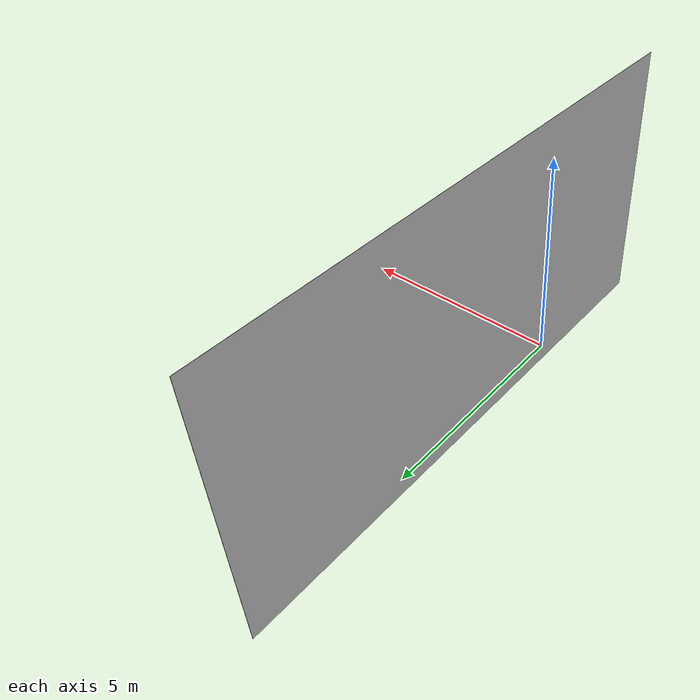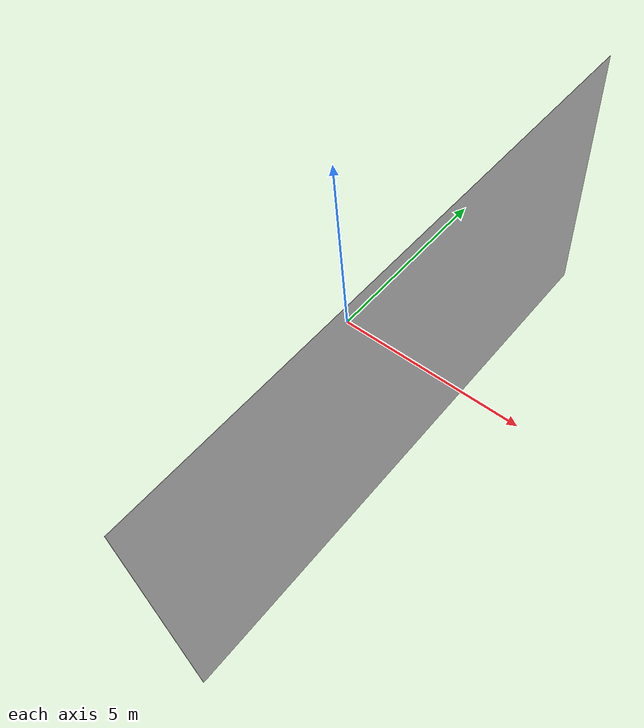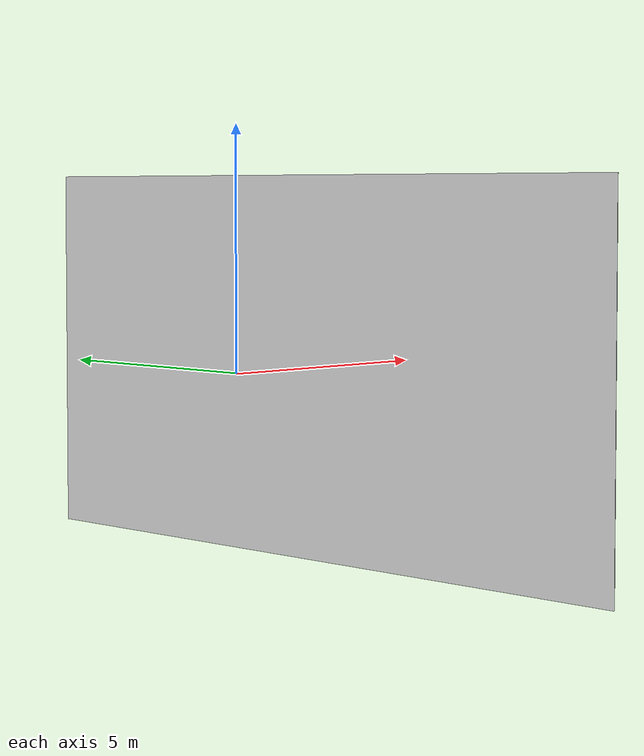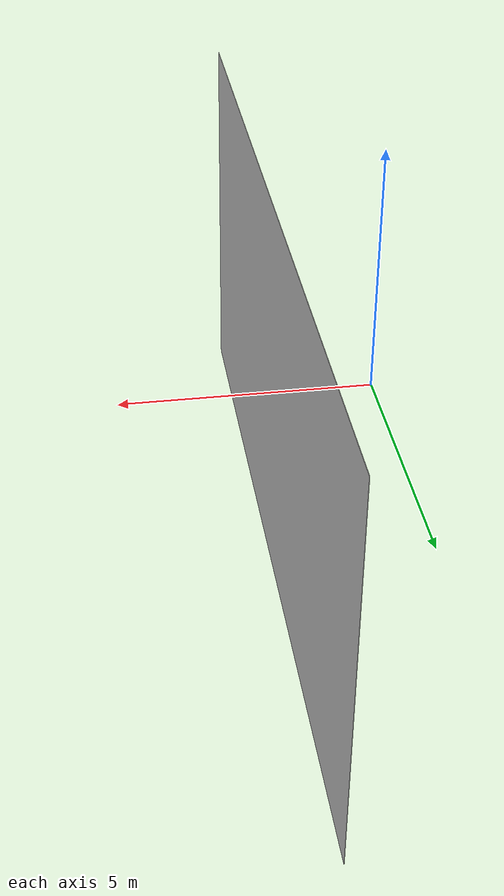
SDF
<?xml version='1.0'?>
<sdf version='1.7'>
  <model name='Pattern_Plane'>
    <static>0</static>
    <link name='plane'>
      <pose>0 0 0 0 -0 0</pose>
      <inertial>
        <inertia>
          <ixx>500</ixx>
          <ixy>0</ixy>
          <ixz>0</ixz>
          <iyy>500</iyy>
          <iyz>0</iyz>
          <izz>1000</izz>
        </inertia>
        <mass>1500</mass>
        <pose>0 0 0 0 -0 0</pose>
      </inertial>
      <self_collide>0</self_collide>
      <enable_wind>0</enable_wind>
      <kinematic>0</kinematic>
      <gravity>0</gravity>
      <visual name='plane_visual'>
        <cast_shadows>0</cast_shadows>
        <pose>2 0 0 1.57 0 1.57</pose>
        <geometry>
          <box>
            <size>16 8 0.01</size>
          </box>
        </geometry>
        <material>
          <script>
            <uri>model://Pattern_Plane/materials/scripts</uri>
            <uri>model://Pattern_Plane/materials/textures</uri>
            <name>SurfacePattern/L_0.25</name>

          </script>
          <shader type='pixel'>
            <normal_map>__default__</normal_map>
          </shader>
          <emissive>0 0 0 1</emissive>
        </material>
      </visual>
      <sensor name='plane_contact_sensor' type='contact'>
        <always_on>1</always_on>
        <visualize>1</visualize>
        <contact>
          <collision>plane_collision</collision>
          <topic>__default_topic__</topic>
        </contact>
        <plugin name='contact_plugin' filename='libgazebo_ros_bumper.so'>
          <bumperTopicName>/ENV/BodyContact</bumperTopicName>
          <frameName>plane</frameName>
          <alwaysOn>true</alwaysOn>
          <updateRate>500</updateRate>
        </plugin>
        <pose>0 0 0 0 -0 0</pose>
      </sensor>
    </link>
    <joint name="plane_joint" type="fixed">
      <parent>world</parent>
      <child>plane</child>
      <pose>0 0 0 0 0 0</pose>
      <physics>
        <ode>
        </ode>
        <provide_feedback>true</provide_feedback>
      </physics>
    </joint>
    <static>0</static>
    <allow_auto_disable>1</allow_auto_disable>

    <plugin name="ForceTorque_Sensor" filename="libgazebo_ros_ft_sensor.so">
      <jointName>plane_joint</jointName>
      <topicName>/ENV/Surface_FT_sensor</topicName>
      <updateRate>500</updateRate>
  </plugin>
  </model>
</sdf>
